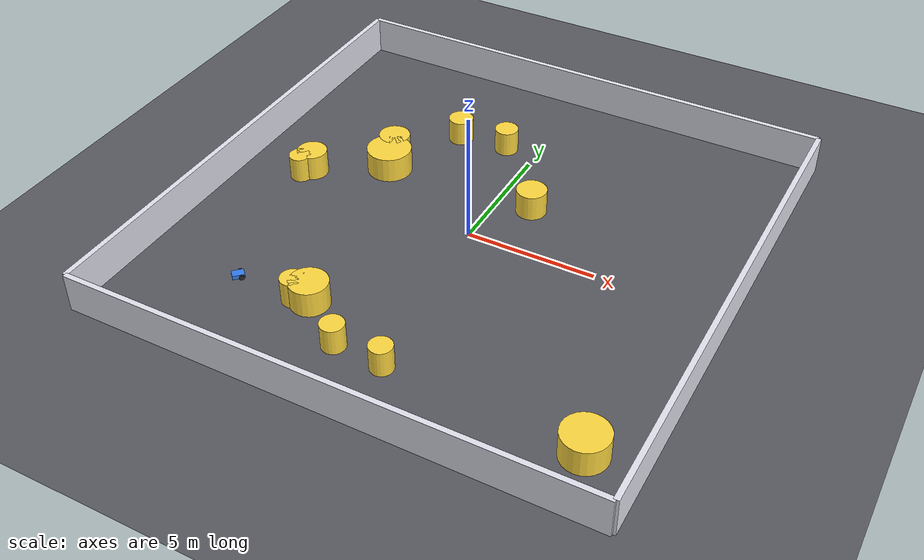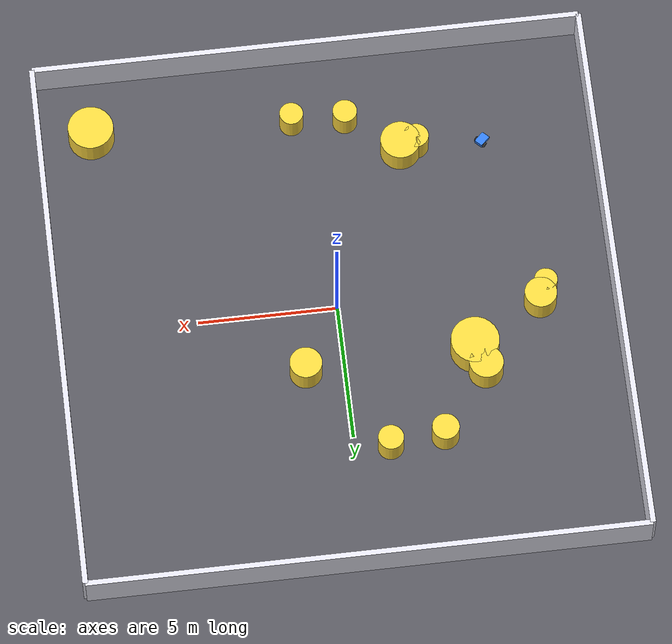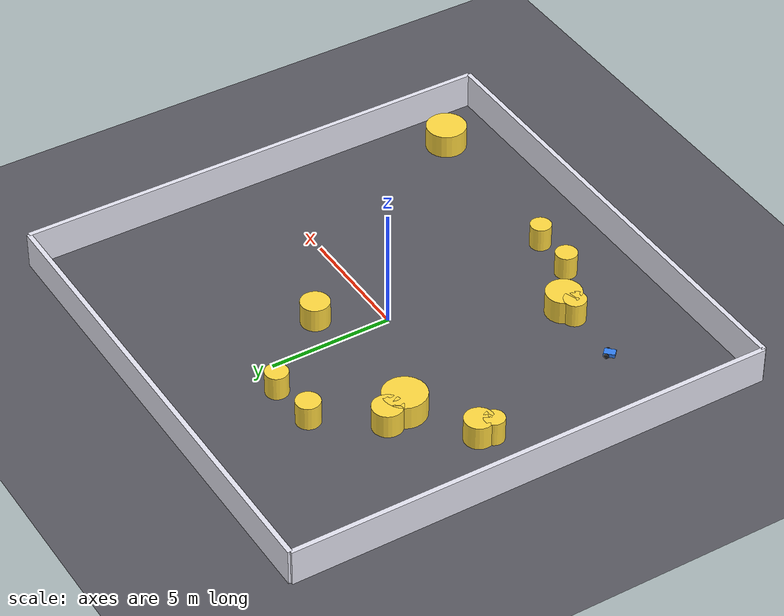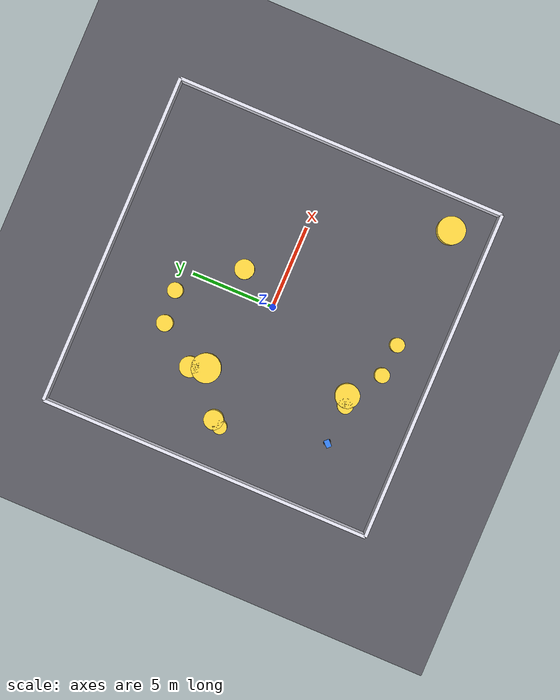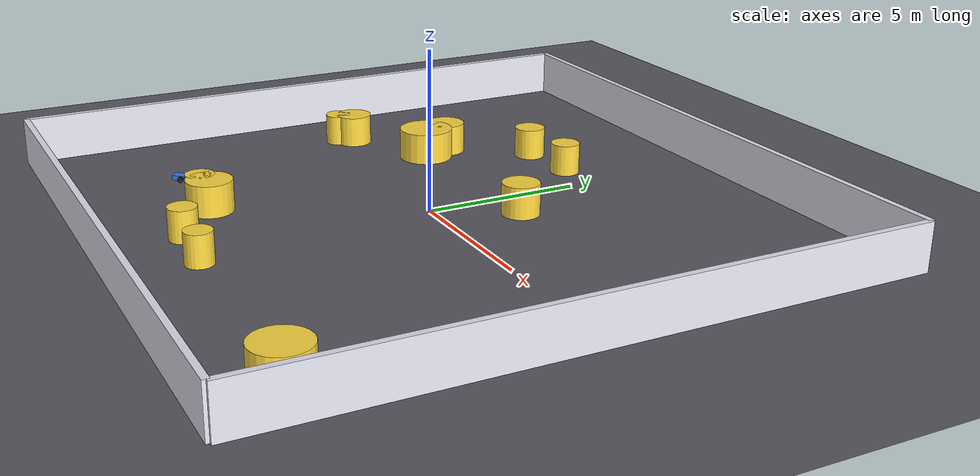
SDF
<?xml version="1.0" ?>
<!-- GENERATED by src/rca_gazebo/scripts/gen_world.py (seed=7) - do not edit by hand. -->
<sdf version="1.9">
  <world name="rca_arena">
    <physics name="default" type="ignored">
      <max_step_size>0.004</max_step_size>
      <real_time_factor>1.0</real_time_factor>
    </physics>
    <plugin filename="gz-sim-physics-system" name="gz::sim::systems::Physics"/>
    <plugin filename="gz-sim-sensors-system" name="gz::sim::systems::Sensors">
      <render_engine>ogre2</render_engine>
    </plugin>
    <plugin filename="gz-sim-user-commands-system" name="gz::sim::systems::UserCommands"/>
    <plugin filename="gz-sim-scene-broadcaster-system" name="gz::sim::systems::SceneBroadcaster"/>
    <plugin filename="gz-sim-imu-system" name="gz::sim::systems::Imu"/>

    <gravity>0 0 -9.8</gravity>
    <scene>
      <ambient>0.6 0.6 0.6 1</ambient>
      <background>0.85 0.88 0.92 1</background>
    </scene>
    <light type="directional" name="sun">
      <pose>0 0 12 0 0 0</pose>
      <diffuse>1 1 1 1</diffuse>
      <specular>0.2 0.2 0.2 1</specular>
      <direction>0.4 0.3 -1</direction>
    </light>

    <model name="ground_plane">
      <static>true</static>
      <link name="link">
        <collision name="collision">
          <geometry><plane><normal>0 0 1</normal><size>40 40</size></plane></geometry>
        </collision>
        <visual name="visual">
          <geometry><plane><normal>0 0 1</normal><size>40 40</size></plane></geometry>
          <material><ambient>0.3 0.3 0.32 1</ambient><diffuse>0.35 0.35 0.38 1</diffuse></material>
        </visual>
      </link>
    </model>

    <model name="wall_0">
      <static>true</static>
      <pose>0.0 10.0 0.75 0 0 0.0</pose>
      <link name="link">
        <collision name="collision">
          <geometry><box><size>20.0 0.2 1.5</size></box></geometry>
        </collision>
        <visual name="visual">
          <geometry><box><size>20.0 0.2 1.5</size></box></geometry>
          <material><ambient>0.8 0.8 0.85 1</ambient><diffuse>0.9 0.9 0.95 1</diffuse></material>
        </visual>
      </link>
    </model>

    <model name="wall_1">
      <static>true</static>
      <pose>0.0 -10.0 0.75 0 0 0.0</pose>
      <link name="link">
        <collision name="collision">
          <geometry><box><size>20.0 0.2 1.5</size></box></geometry>
        </collision>
        <visual name="visual">
          <geometry><box><size>20.0 0.2 1.5</size></box></geometry>
          <material><ambient>0.8 0.8 0.85 1</ambient><diffuse>0.9 0.9 0.95 1</diffuse></material>
        </visual>
      </link>
    </model>

    <model name="wall_2">
      <static>true</static>
      <pose>10.0 0.0 0.75 0 0 1.5707963</pose>
      <link name="link">
        <collision name="collision">
          <geometry><box><size>20.0 0.2 1.5</size></box></geometry>
        </collision>
        <visual name="visual">
          <geometry><box><size>20.0 0.2 1.5</size></box></geometry>
          <material><ambient>0.8 0.8 0.85 1</ambient><diffuse>0.9 0.9 0.95 1</diffuse></material>
        </visual>
      </link>
    </model>

    <model name="wall_3">
      <static>true</static>
      <pose>-10.0 0.0 0.75 0 0 1.5707963</pose>
      <link name="link">
        <collision name="collision">
          <geometry><box><size>20.0 0.2 1.5</size></box></geometry>
        </collision>
        <visual name="visual">
          <geometry><box><size>20.0 0.2 1.5</size></box></geometry>
          <material><ambient>0.8 0.8 0.85 1</ambient><diffuse>0.9 0.9 0.95 1</diffuse></material>
        </visual>
      </link>
    </model>

    <model name="obstacle_0">
      <static>true</static>
      <pose>-2.995 -5.936 0.5 0 0 0</pose>
      <link name="link">
        <collision name="collision">
          <geometry><cylinder><radius>0.725</radius><length>1.0</length></cylinder></geometry>
        </collision>
        <visual name="visual">
          <geometry><cylinder><radius>0.725</radius><length>1.0</length></cylinder></geometry>
          <material><ambient>0.9 0.75 0.2 1</ambient><diffuse>1.0 0.85 0.25 1</diffuse></material>
        </visual>
      </link>
    </model>

    <model name="obstacle_1">
      <static>true</static>
      <pose>-7.269 0.610 0.5 0 0 0</pose>
      <link name="link">
        <collision name="collision">
          <geometry><cylinder><radius>0.583</radius><length>1.0</length></cylinder></geometry>
        </collision>
        <visual name="visual">
          <geometry><cylinder><radius>0.583</radius><length>1.0</length></cylinder></geometry>
          <material><ambient>0.9 0.75 0.2 1</ambient><diffuse>1.0 0.85 0.25 1</diffuse></material>
        </visual>
      </link>
    </model>

    <model name="obstacle_2">
      <static>true</static>
      <pose>-7.514 0.126 0.5 0 0 0</pose>
      <link name="link">
        <collision name="collision">
          <geometry><cylinder><radius>0.419</radius><length>1.0</length></cylinder></geometry>
        </collision>
        <visual name="visual">
          <geometry><cylinder><radius>0.419</radius><length>1.0</length></cylinder></geometry>
          <material><ambient>0.9 0.75 0.2 1</ambient><diffuse>1.0 0.85 0.25 1</diffuse></material>
        </visual>
      </link>
    </model>

    <model name="obstacle_3">
      <static>true</static>
      <pose>-1.128 -7.312 0.5 0 0 0</pose>
      <link name="link">
        <collision name="collision">
          <geometry><cylinder><radius>0.445</radius><length>1.0</length></cylinder></geometry>
        </collision>
        <visual name="visual">
          <geometry><cylinder><radius>0.445</radius><length>1.0</length></cylinder></geometry>
          <material><ambient>0.9 0.75 0.2 1</ambient><diffuse>1.0 0.85 0.25 1</diffuse></material>
        </visual>
      </link>
    </model>

    <model name="obstacle_4">
      <static>true</static>
      <pose>-1.283 5.556 0.5 0 0 0</pose>
      <link name="link">
        <collision name="collision">
          <geometry><cylinder><radius>0.462</radius><length>1.0</length></cylinder></geometry>
        </collision>
        <visual name="visual">
          <geometry><cylinder><radius>0.462</radius><length>1.0</length></cylinder></geometry>
          <material><ambient>0.9 0.75 0.2 1</ambient><diffuse>1.0 0.85 0.25 1</diffuse></material>
        </visual>
      </link>
    </model>

    <model name="obstacle_5">
      <static>true</static>
      <pose>-4.705 2.166 0.5 0 0 0</pose>
      <link name="link">
        <collision name="collision">
          <geometry><cylinder><radius>0.874</radius><length>1.0</length></cylinder></geometry>
        </collision>
        <visual name="visual">
          <geometry><cylinder><radius>0.874</radius><length>1.0</length></cylinder></geometry>
          <material><ambient>0.9 0.75 0.2 1</ambient><diffuse>1.0 0.85 0.25 1</diffuse></material>
        </visual>
      </link>
    </model>

    <model name="obstacle_6">
      <static>true</static>
      <pose>8.096 -7.708 0.5 0 0 0</pose>
      <link name="link">
        <collision name="collision">
          <geometry><cylinder><radius>0.829</radius><length>1.0</length></cylinder></geometry>
        </collision>
        <visual name="visual">
          <geometry><cylinder><radius>0.829</radius><length>1.0</length></cylinder></geometry>
          <material><ambient>0.9 0.75 0.2 1</ambient><diffuse>1.0 0.85 0.25 1</diffuse></material>
        </visual>
      </link>
    </model>

    <model name="obstacle_7">
      <static>true</static>
      <pose>-3.577 -6.048 0.5 0 0 0</pose>
      <link name="link">
        <collision name="collision">
          <geometry><cylinder><radius>0.459</radius><length>1.0</length></cylinder></geometry>
        </collision>
        <visual name="visual">
          <geometry><cylinder><radius>0.459</radius><length>1.0</length></cylinder></geometry>
          <material><ambient>0.9 0.75 0.2 1</ambient><diffuse>1.0 0.85 0.25 1</diffuse></material>
        </visual>
      </link>
    </model>

    <model name="obstacle_8">
      <static>true</static>
      <pose>-3.256 5.374 0.5 0 0 0</pose>
      <link name="link">
        <collision name="collision">
          <geometry><cylinder><radius>0.490</radius><length>1.0</length></cylinder></geometry>
        </collision>
        <visual name="visual">
          <geometry><cylinder><radius>0.490</radius><length>1.0</length></cylinder></geometry>
          <material><ambient>0.9 0.75 0.2 1</ambient><diffuse>1.0 0.85 0.25 1</diffuse></material>
        </visual>
      </link>
    </model>

    <model name="obstacle_9">
      <static>true</static>
      <pose>1.387 2.362 0.5 0 0 0</pose>
      <link name="link">
        <collision name="collision">
          <geometry><cylinder><radius>0.586</radius><length>1.0</length></cylinder></geometry>
        </collision>
        <visual name="visual">
          <geometry><cylinder><radius>0.586</radius><length>1.0</length></cylinder></geometry>
          <material><ambient>0.9 0.75 0.2 1</ambient><diffuse>1.0 0.85 0.25 1</diffuse></material>
        </visual>
      </link>
    </model>

    <model name="obstacle_10">
      <static>true</static>
      <pose>0.812 -7.433 0.5 0 0 0</pose>
      <link name="link">
        <collision name="collision">
          <geometry><cylinder><radius>0.430</radius><length>1.0</length></cylinder></geometry>
        </collision>
        <visual name="visual">
          <geometry><cylinder><radius>0.430</radius><length>1.0</length></cylinder></geometry>
          <material><ambient>0.9 0.75 0.2 1</ambient><diffuse>1.0 0.85 0.25 1</diffuse></material>
        </visual>
      </link>
    </model>

    <model name="obstacle_11">
      <static>true</static>
      <pose>-4.999 3.067 0.5 0 0 0</pose>
      <link name="link">
        <collision name="collision">
          <geometry><cylinder><radius>0.614</radius><length>1.0</length></cylinder></geometry>
        </collision>
        <visual name="visual">
          <geometry><cylinder><radius>0.614</radius><length>1.0</length></cylinder></geometry>
          <material><ambient>0.9 0.75 0.2 1</ambient><diffuse>1.0 0.85 0.25 1</diffuse></material>
        </visual>
      </link>
    </model>

    <model name="rca_bot">
      <pose>-6.000 -6.000 0.12 0 0 0.7854</pose>
      <link name="base_link">
        <inertial>
          <mass>6.0</mass>
          <inertia><ixx>0.08</ixx><iyy>0.12</iyy><izz>0.15</izz><ixy>0</ixy><ixz>0</ixz><iyz>0</iyz></inertia>
        </inertial>
        <collision name="collision">
          <geometry><box><size>0.45 0.32 0.16</size></box></geometry>
        </collision>
        <visual name="visual">
          <geometry><box><size>0.45 0.32 0.16</size></box></geometry>
          <material><ambient>0.15 0.4 0.8 1</ambient><diffuse>0.2 0.5 0.95 1</diffuse></material>
        </visual>

        <sensor name="lidar" type="gpu_lidar">
          <topic>scan</topic>
          <update_rate>10</update_rate>
          <always_on>1</always_on>
          <pose>0.18 0 0.14 0 0 0</pose>
          <lidar>
            <scan>
              <horizontal>
                <samples>90</samples>
                <resolution>1</resolution>
                <min_angle>-1.5707963</min_angle>
                <max_angle>1.5707963</max_angle>
              </horizontal>
              <vertical><samples>1</samples><min_angle>0</min_angle><max_angle>0</max_angle></vertical>
            </scan>
            <range><min>0.12</min><max>15.0</max><resolution>0.01</resolution></range>
          </lidar>
        </sensor>

        <sensor name="camera" type="camera">
          <topic>camera/image</topic>
          <update_rate>5</update_rate>
          <always_on>1</always_on>
          <pose>0.2 0 0.16 0 0 0</pose>
          <camera>
            <horizontal_fov>1.2217</horizontal_fov>
            <image><width>64</width><height>48</height><format>R8G8B8</format></image>
            <clip><near>0.1</near><far>20.0</far></clip>
          </camera>
        </sensor>

        <sensor name="imu" type="imu">
          <topic>imu</topic>
          <update_rate>20</update_rate>
          <always_on>1</always_on>
        </sensor>
      </link>

      <link name="left_wheel">
        <pose relative_to="base_link">0.10 0.19 -0.02 -1.5707963 0 0</pose>
        <inertial><mass>0.6</mass>
          <inertia><ixx>0.002</ixx><iyy>0.002</iyy><izz>0.003</izz><ixy>0</ixy><ixz>0</ixz><iyz>0</iyz></inertia>
        </inertial>
        <collision name="collision"><geometry><cylinder><radius>0.1</radius><length>0.05</length></cylinder></geometry>
          <surface><friction><ode><mu>1.2</mu><mu2>1.2</mu2></ode></friction></surface>
        </collision>
        <visual name="visual"><geometry><cylinder><radius>0.1</radius><length>0.05</length></cylinder></geometry>
          <material><ambient>0.1 0.1 0.1 1</ambient><diffuse>0.15 0.15 0.15 1</diffuse></material>
        </visual>
      </link>

      <link name="right_wheel">
        <pose relative_to="base_link">0.10 -0.19 -0.02 -1.5707963 0 0</pose>
        <inertial><mass>0.6</mass>
          <inertia><ixx>0.002</ixx><iyy>0.002</iyy><izz>0.003</izz><ixy>0</ixy><ixz>0</ixz><iyz>0</iyz></inertia>
        </inertial>
        <collision name="collision"><geometry><cylinder><radius>0.1</radius><length>0.05</length></cylinder></geometry>
          <surface><friction><ode><mu>1.2</mu><mu2>1.2</mu2></ode></friction></surface>
        </collision>
        <visual name="visual"><geometry><cylinder><radius>0.1</radius><length>0.05</length></cylinder></geometry>
          <material><ambient>0.1 0.1 0.1 1</ambient><diffuse>0.15 0.15 0.15 1</diffuse></material>
        </visual>
      </link>

      <link name="caster">
        <pose relative_to="base_link">-0.16 0 -0.08 0 0 0</pose>
        <inertial><mass>0.2</mass>
          <inertia><ixx>0.0002</ixx><iyy>0.0002</iyy><izz>0.0002</izz><ixy>0</ixy><ixz>0</ixz><iyz>0</iyz></inertia>
        </inertial>
        <collision name="collision"><geometry><sphere><radius>0.04</radius></sphere></geometry>
          <surface><friction><ode><mu>0.05</mu><mu2>0.05</mu2></ode></friction></surface>
        </collision>
        <visual name="visual"><geometry><sphere><radius>0.04</radius></sphere></geometry></visual>
      </link>

      <joint name="left_wheel_joint" type="revolute">
        <parent>base_link</parent><child>left_wheel</child>
        <axis><xyz expressed_in="__model__">0 1 0</xyz><limit><lower>-1e16</lower><upper>1e16</upper></limit></axis>
      </joint>
      <joint name="right_wheel_joint" type="revolute">
        <parent>base_link</parent><child>right_wheel</child>
        <axis><xyz expressed_in="__model__">0 1 0</xyz><limit><lower>-1e16</lower><upper>1e16</upper></limit></axis>
      </joint>
      <joint name="caster_joint" type="ball">
        <parent>base_link</parent><child>caster</child>
      </joint>

      <plugin filename="gz-sim-diff-drive-system" name="gz::sim::systems::DiffDrive">
        <left_joint>left_wheel_joint</left_joint>
        <right_joint>right_wheel_joint</right_joint>
        <wheel_separation>0.38</wheel_separation>
        <wheel_radius>0.1</wheel_radius>
        <max_linear_acceleration>1.0</max_linear_acceleration>
        <topic>/model/rca_bot/cmd_vel</topic>
        <odom_topic>/model/rca_bot/odometry</odom_topic>
        <tf_topic>/model/rca_bot/tf</tf_topic>
        <frame_id>odom</frame_id>
        <child_frame_id>base_link</child_frame_id>
        <odom_publish_frequency>20</odom_publish_frequency>
      </plugin>
    </model>

  </world>
</sdf>
